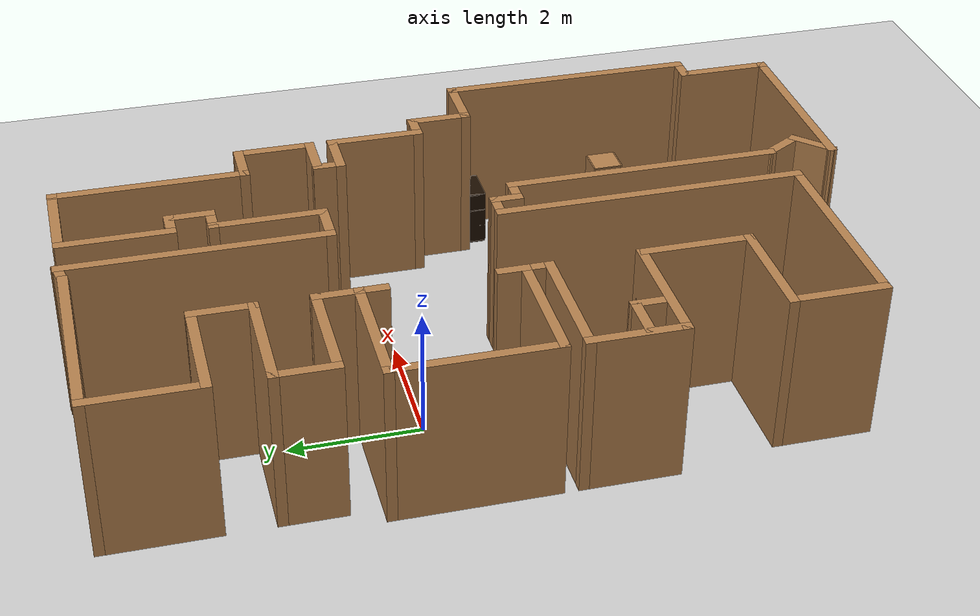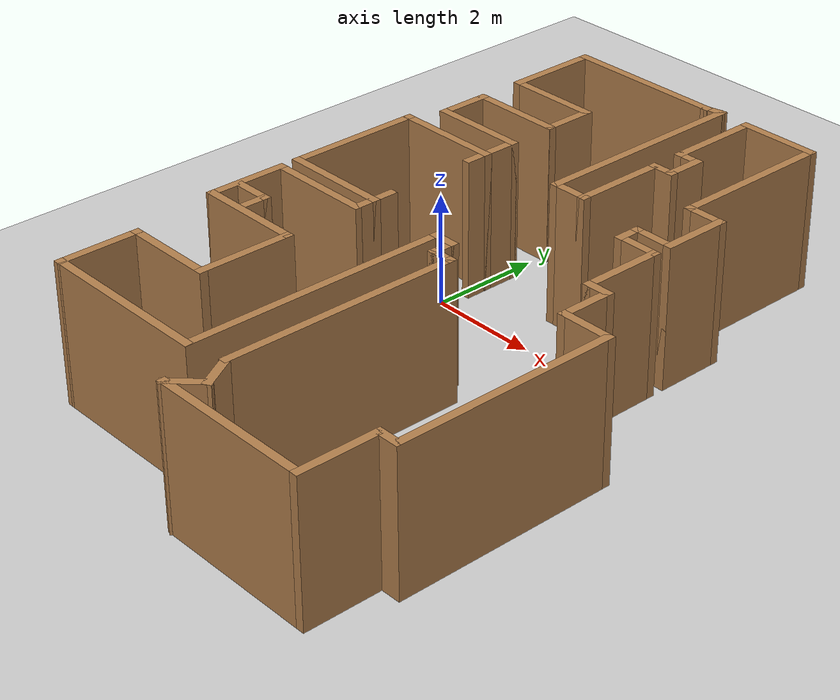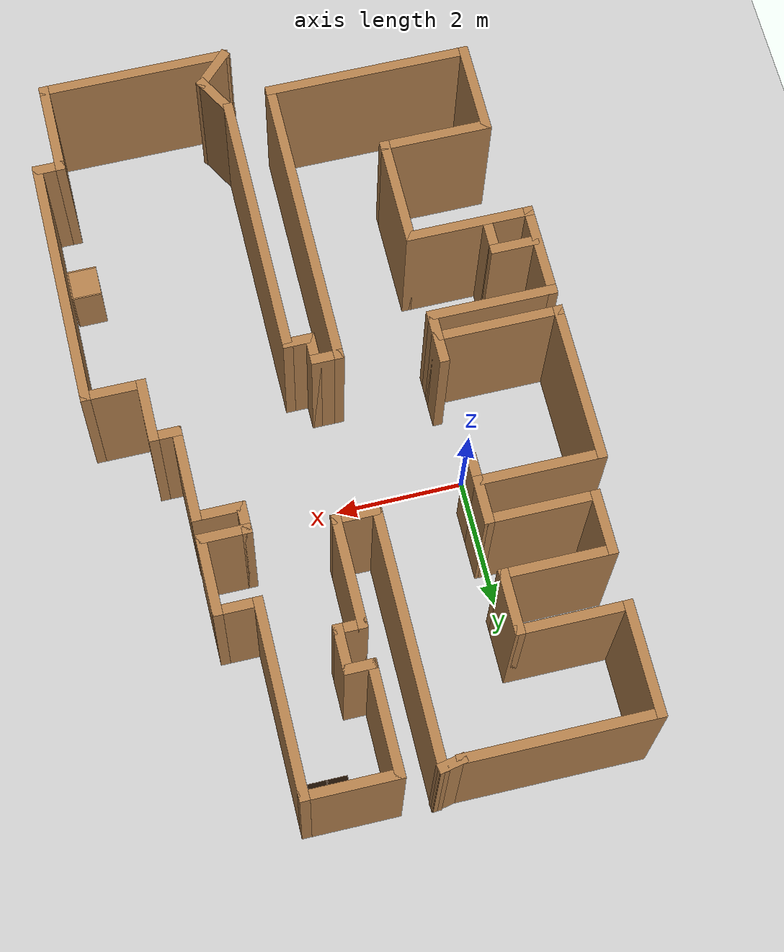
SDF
<sdf version="1.6">
 <world name="default">
  <light name="sun" type="directional">
   <pose>0 0 10 0 -0 0</pose>
   <diffuse>0.8 0.8 0.8 1</diffuse>
   <specular>0.2 0.2 0.2 1</specular>
   <attenuation>
    <range>1000</range>
    <constant>0.9</constant>
    <linear>0.01</linear>
    <quadratic>0.001</quadratic>
   </attenuation>
   <direction>-0.5 0.1 -0.9</direction>
  </light>
  <model name="ground_plane">
   <static>1</static>
   <link name="link">
    <collision name="collision">
     <geometry><plane><normal>0 0 1</normal><size>100 100</size></plane></geometry>
     <surface>
      <contact><collide_bitmask>65535</collide_bitmask></contact>
      <friction><ode><mu>100</mu><mu2>50</mu2></ode></friction>
     </surface>
    </collision>
    <visual name="visual">
     <cast_shadows>0</cast_shadows>
     <geometry><plane><normal>0 0 1</normal><size>100 100</size></plane></geometry>
     <material>
      <script><uri>file://media/materials/scripts/gazebo.material</uri><name>Gazebo/Grey</name></script>
     </material>
    </visual>
   </link>
  </model>
  <gravity>0 0 -9.8</gravity>
  <magnetic_field>6e-06 2.3e-05 -4.2e-05</magnetic_field>
  <atmosphere type="adiabatic"/>
  <physics name="default_physics" default="0" type="ode">
   <max_step_size>0.001</max_step_size>
   <real_time_factor>1</real_time_factor>
   <real_time_update_rate>1000</real_time_update_rate>
  </physics>
  <scene><ambient>0.4 0.4 0.4 1</ambient><background>0.7 0.7 0.7 1</background><shadows>1</shadows></scene>
  <audio><device>default</device></audio>
  <spherical_coordinates>
   <surface_model>EARTH_WGS84</surface_model>
   <latitude_deg>0</latitude_deg>
   <longitude_deg>0</longitude_deg>
   <elevation>0</elevation>
   <heading_deg>0</heading_deg>
  </spherical_coordinates>
  <model name="map_84">
   <pose>1.8252 -1.07497 0 0 -0 0</pose>
   <link name="Wall_0">
    <collision name="Wall_0_Collision">
     <geometry><box><size>3 0.15 2.5</size></box></geometry>
     <pose>0 0 1.25 0 -0 0</pose>
    </collision>
    <visual name="Wall_0_Visual">
     <pose>0 0 1.25 0 -0 0</pose>
     <geometry><box><size>3 0.15 2.5</size></box></geometry>
     <material>
      <script><uri>file://media/materials/scripts/gazebo.material</uri><name>Gazebo/Wood</name></script>
      <ambient>1 1 1 1</ambient>
     </material>
     <meta><layer>0</layer></meta>
    </visual>
    <pose>-1.88787 5.82769 0 0 -0 3.14159</pose>
   </link>
   <link name="Wall_1">
    <collision name="Wall_1_Collision">
     <geometry><box><size>1.75 0.15 2.5</size></box></geometry>
     <pose>0 0 1.25 0 -0 0</pose>
    </collision>
    <visual name="Wall_1_Visual">
     <pose>0 0 1.25 0 -0 0</pose>
     <geometry><box><size>1.75 0.15 2.5</size></box></geometry>
     <material>
      <script><uri>file://media/materials/scripts/gazebo.material</uri><name>Gazebo/Wood</name></script>
      <ambient>1 1 1 1</ambient>
     </material>
     <meta><layer>0</layer></meta>
    </visual>
    <pose>-3.31287 5.02769 0 0 -0 -1.5708</pose>
   </link>
   <link name="Wall_10">
    <collision name="Wall_10_Collision">
     <geometry><box><size>2 0.15 2.5</size></box></geometry>
     <pose>0 0 1.25 0 -0 0</pose>
    </collision>
    <visual name="Wall_10_Visual">
     <pose>0 0 1.25 0 -0 0</pose>
     <geometry><box><size>2 0.15 2.5</size></box></geometry>
     <material>
      <script><uri>file://media/materials/scripts/gazebo.material</uri><name>Gazebo/Wood</name></script>
      <ambient>1 1 1 1</ambient>
     </material>
     <meta><layer>0</layer></meta>
    </visual>
    <pose>-2.63787 -0.422313 0 0 -0 0</pose>
   </link>
   <link name="Wall_11">
    <collision name="Wall_11_Collision">
     <geometry><box><size>0.5 0.15 2.5</size></box></geometry>
     <pose>0 0 1.25 0 -0 0</pose>
    </collision>
    <visual name="Wall_11_Visual">
     <pose>0 0 1.25 0 -0 0</pose>
     <geometry><box><size>0.5 0.15 2.5</size></box></geometry>
     <material>
      <script><uri>file://media/materials/scripts/gazebo.material</uri><name>Gazebo/Wood</name></script>
      <ambient>1 1 1 1</ambient>
     </material>
     <meta><layer>0</layer></meta>
    </visual>
    <pose>-1.71287 -0.597313 0 0 -0 -1.5708</pose>
   </link>
   <link name="Wall_12">
    <collision name="Wall_12_Collision">
     <geometry><box><size>2 0.15 2.5</size></box></geometry>
     <pose>0 0 1.25 0 -0 0</pose>
    </collision>
    <visual name="Wall_12_Visual">
     <pose>0 0 1.25 0 -0 0</pose>
     <geometry><box><size>2 0.15 2.5</size></box></geometry>
     <material>
      <script><uri>file://media/materials/scripts/gazebo.material</uri><name>Gazebo/Wood</name></script>
      <ambient>1 1 1 1</ambient>
     </material>
     <meta><layer>0</layer></meta>
    </visual>
    <pose>-2.63787 -0.772313 0 0 -0 3.14159</pose>
   </link>
   <link name="Wall_13">
    <collision name="Wall_13_Collision">
     <geometry><box><size>1.5 0.15 2.5</size></box></geometry>
     <pose>0 0 1.25 0 -0 0</pose>
    </collision>
    <visual name="Wall_13_Visual">
     <pose>0 0 1.25 0 -0 0</pose>
     <geometry><box><size>1.5 0.15 2.5</size></box></geometry>
     <material>
      <script><uri>file://media/materials/scripts/gazebo.material</uri><name>Gazebo/Wood</name></script>
      <ambient>1 1 1 1</ambient>
     </material>
     <meta><layer>0</layer></meta>
    </visual>
    <pose>-3.56287 -1.44731 0 0 -0 -1.5708</pose>
   </link>
   <link name="Wall_14">
    <collision name="Wall_14_Collision">
     <geometry><box><size>2 0.15 2.5</size></box></geometry>
     <pose>0 0 1.25 0 -0 0</pose>
    </collision>
    <visual name="Wall_14_Visual">
     <pose>0 0 1.25 0 -0 0</pose>
     <geometry><box><size>2 0.15 2.5</size></box></geometry>
     <material>
      <script><uri>file://media/materials/scripts/gazebo.material</uri><name>Gazebo/Wood</name></script>
      <ambient>1 1 1 1</ambient>
     </material>
     <meta><layer>0</layer></meta>
    </visual>
    <pose>-2.63787 -2.12231 0 0 -0 0</pose>
   </link>
   <link name="Wall_17">
    <collision name="Wall_17_Collision">
     <geometry><box><size>1.75 0.15 2.5</size></box></geometry>
     <pose>0 0 1.25 0 -0 0</pose>
    </collision>
    <visual name="Wall_17_Visual">
     <pose>0 0 1.25 0 -0 0</pose>
     <geometry><box><size>1.75 0.15 2.5</size></box></geometry>
     <material>
      <script><uri>file://media/materials/scripts/gazebo.material</uri><name>Gazebo/Wood</name></script>
      <ambient>1 1 1 1</ambient>
     </material>
     <meta><layer>0</layer></meta>
    </visual>
    <pose>-1.71287 -2.92231 0 0 -0 -1.5708</pose>
   </link>
   <link name="Wall_18">
    <collision name="Wall_18_Collision">
     <geometry><box><size>1.75 0.15 2.5</size></box></geometry>
     <pose>0 0 1.25 0 -0 0</pose>
    </collision>
    <visual name="Wall_18_Visual">
     <pose>0 0 1.25 0 -0 0</pose>
     <geometry><box><size>1.75 0.15 2.5</size></box></geometry>
     <material>
      <script><uri>file://media/materials/scripts/gazebo.material</uri><name>Gazebo/Wood</name></script>
      <ambient>1 1 1 1</ambient>
     </material>
     <meta><layer>0</layer></meta>
    </visual>
    <pose>-2.51287 -3.72231 0 0 -0 3.14159</pose>
   </link>
   <link name="Wall_19">
    <collision name="Wall_19_Collision">
     <geometry><box><size>1.5 0.15 2.5</size></box></geometry>
     <pose>0 0 1.25 0 -0 0</pose>
    </collision>
    <visual name="Wall_19_Visual">
     <pose>0 0 1.25 0 -0 0</pose>
     <geometry><box><size>1.5 0.15 2.5</size></box></geometry>
     <material>
      <script><uri>file://media/materials/scripts/gazebo.material</uri><name>Gazebo/Wood</name></script>
      <ambient>1 1 1 1</ambient>
     </material>
     <meta><layer>0</layer></meta>
    </visual>
    <pose>-3.31287 -4.39731 0 0 -0 -1.5708</pose>
   </link>
   <link name="Wall_2">
    <collision name="Wall_2_Collision">
     <geometry><box><size>1.75 0.15 2.5</size></box></geometry>
     <pose>0 0 1.25 0 -0 0</pose>
    </collision>
    <visual name="Wall_2_Visual">
     <pose>0 0 1.25 0 -0 0</pose>
     <geometry><box><size>1.75 0.15 2.5</size></box></geometry>
     <material>
      <script><uri>file://media/materials/scripts/gazebo.material</uri><name>Gazebo/Wood</name></script>
      <ambient>1 1 1 1</ambient>
     </material>
     <meta><layer>0</layer></meta>
    </visual>
    <pose>-2.51287 4.22769 0 0 -0 0</pose>
   </link>
   <link name="Wall_20">
    <collision name="Wall_20_Collision">
     <geometry><box><size>3.25 0.15 2.5</size></box></geometry>
     <pose>0 0 1.25 0 -0 0</pose>
    </collision>
    <visual name="Wall_20_Visual">
     <pose>0 0 1.25 0 -0 0</pose>
     <geometry><box><size>3.25 0.15 2.5</size></box></geometry>
     <material>
      <script><uri>file://media/materials/scripts/gazebo.material</uri><name>Gazebo/Wood</name></script>
      <ambient>1 1 1 1</ambient>
     </material>
     <meta><layer>0</layer></meta>
    </visual>
    <pose>-1.76287 -5.07231 0 0 -0 0</pose>
   </link>
   <link name="Wall_23">
    <collision name="Wall_23_Collision">
     <geometry><box><size>0.75 0.15 2.5</size></box></geometry>
     <pose>0 0 1.25 0 -0 0</pose>
    </collision>
    <visual name="Wall_23_Visual">
     <pose>0 0 1.25 0 -0 0</pose>
     <geometry><box><size>0.75 0.15 2.5</size></box></geometry>
     <material>
      <script><uri>file://media/materials/scripts/gazebo.material</uri><name>Gazebo/Wood</name></script>
      <ambient>1 1 1 1</ambient>
     </material>
     <meta><layer>0</layer></meta>
    </visual>
    <pose>-3.20614 -1.62308 0 0 -0 0</pose>
   </link>
   <link name="Wall_24">
    <collision name="Wall_24_Collision">
     <geometry><box><size>0.5 0.15 2.5</size></box></geometry>
     <pose>0 0 1.25 0 -0 0</pose>
    </collision>
    <visual name="Wall_24_Visual">
     <pose>0 0 1.25 0 -0 0</pose>
     <geometry><box><size>0.5 0.15 2.5</size></box></geometry>
     <material>
      <script><uri>file://media/materials/scripts/gazebo.material</uri><name>Gazebo/Wood</name></script>
      <ambient>1 1 1 1</ambient>
     </material>
     <meta><layer>0</layer></meta>
    </visual>
    <pose>-2.90614 -1.79808 0 0 -0 -1.5708</pose>
   </link>
   <link name="Wall_28">
    <collision name="Wall_28_Collision">
     <geometry><box><size>4.75 0.15 2.5</size></box></geometry>
     <pose>0 0 1.25 0 -0 0</pose>
    </collision>
    <visual name="Wall_28_Visual">
     <pose>0 0 1.25 0 -0 0</pose>
     <geometry><box><size>4.75 0.15 2.5</size></box></geometry>
     <material>
      <script><uri>file://media/materials/scripts/gazebo.material</uri><name>Gazebo/Wood</name></script>
      <ambient>1 1 1 1</ambient>
     </material>
     <meta><layer>0</layer></meta>
    </visual>
    <pose>-0.212868 -2.77231 0 0 -0 1.5708</pose>
   </link>
   <link name="Wall_29">
    <collision name="Wall_29_Collision">
     <geometry><box><size>0.5 0.15 2.5</size></box></geometry>
     <pose>0 0 1.25 0 -0 0</pose>
    </collision>
    <visual name="Wall_29_Visual">
     <pose>0 0 1.25 0 -0 0</pose>
     <geometry><box><size>0.5 0.15 2.5</size></box></geometry>
     <material>
      <script><uri>file://media/materials/scripts/gazebo.material</uri><name>Gazebo/Wood</name></script>
      <ambient>1 1 1 1</ambient>
     </material>
     <meta><layer>0</layer></meta>
    </visual>
    <pose>-0.037868 -0.472313 0 0 -0 0</pose>
   </link>
   <link name="Wall_3">
    <collision name="Wall_3_Collision">
     <geometry><box><size>1 0.15 2.5</size></box></geometry>
     <pose>0 0 1.25 0 -0 0</pose>
    </collision>
    <visual name="Wall_3_Visual">
     <pose>0 0 1.25 0 -0 0</pose>
     <geometry><box><size>1 0.15 2.5</size></box></geometry>
     <material>
      <script><uri>file://media/materials/scripts/gazebo.material</uri><name>Gazebo/Wood</name></script>
      <ambient>1 1 1 1</ambient>
     </material>
     <meta><layer>0</layer></meta>
    </visual>
    <pose>-1.71287 3.80269 0 0 -0 -1.5708</pose>
   </link>
   <link name="Wall_30">
    <collision name="Wall_30_Collision">
     <geometry><box><size>0.5 0.15 2.5</size></box></geometry>
     <pose>0 0 1.25 0 -0 0</pose>
    </collision>
    <visual name="Wall_30_Visual">
     <pose>0 0 1.25 0 -0 0</pose>
     <geometry><box><size>0.5 0.15 2.5</size></box></geometry>
     <material>
      <script><uri>file://media/materials/scripts/gazebo.material</uri><name>Gazebo/Wood</name></script>
      <ambient>1 1 1 1</ambient>
     </material>
     <meta><layer>0</layer></meta>
    </visual>
    <pose>0.137132 -0.647313 0 0 -0 -1.5708</pose>
   </link>
   <link name="Wall_31">
    <collision name="Wall_31_Collision">
     <geometry><box><size>0.5 0.15 2.5</size></box></geometry>
     <pose>0 0 1.25 0 -0 0</pose>
    </collision>
    <visual name="Wall_31_Visual">
     <pose>0 0 1.25 0 -0 0</pose>
     <geometry><box><size>0.5 0.15 2.5</size></box></geometry>
     <material>
      <script><uri>file://media/materials/scripts/gazebo.material</uri><name>Gazebo/Wood</name></script>
      <ambient>1 1 1 1</ambient>
     </material>
     <meta><layer>0</layer></meta>
    </visual>
    <pose>0.312132 -0.822313 0 0 -0 0</pose>
   </link>
   <link name="Wall_32">
    <collision name="Wall_32_Collision">
     <geometry><box><size>4.25 0.15 2.5</size></box></geometry>
     <pose>0 0 1.25 0 -0 0</pose>
    </collision>
    <visual name="Wall_32_Visual">
     <pose>0 0 1.25 0 -0 0</pose>
     <geometry><box><size>4.25 0.15 2.5</size></box></geometry>
     <material>
      <script><uri>file://media/materials/scripts/gazebo.material</uri><name>Gazebo/Wood</name></script>
      <ambient>1 1 1 1</ambient>
     </material>
     <meta><layer>0</layer></meta>
    </visual>
    <pose>0.487132 -2.87231 0 0 -0 -1.5708</pose>
   </link>
   <link name="Wall_37">
    <collision name="Wall_37_Collision">
     <geometry><box><size>0.75 0.15 2.5</size></box></geometry>
     <pose>0 0 1.25 0 -0 0</pose>
    </collision>
    <visual name="Wall_37_Visual">
     <pose>0 0 1.25 0 -0 0</pose>
     <geometry><box><size>0.75 0.15 2.5</size></box></geometry>
     <material>
      <script><uri>file://media/materials/scripts/gazebo.material</uri><name>Gazebo/Wood</name></script>
      <ambient>1 1 1 1</ambient>
     </material>
     <meta><layer>0</layer></meta>
    </visual>
    <pose>0.637132 -5.18212 0 0 -0 -1.0472</pose>
   </link>
   <link name="Wall_38">
    <collision name="Wall_38_Collision">
     <geometry><box><size>0.75 0.15 2.5</size></box></geometry>
     <pose>0 0 1.25 0 -0 0</pose>
    </collision>
    <visual name="Wall_38_Visual">
     <pose>0 0 1.25 0 -0 0</pose>
     <geometry><box><size>0.75 0.15 2.5</size></box></geometry>
     <material>
      <script><uri>file://media/materials/scripts/gazebo.material</uri><name>Gazebo/Wood</name></script>
      <ambient>1 1 1 1</ambient>
     </material>
     <meta><layer>0</layer></meta>
    </visual>
    <pose>0.575 -5.65406 0 0 -0 -2.35619</pose>
   </link>
   <link name="Wall_39">
    <collision name="Wall_39_Collision">
     <geometry><box><size>3 0.15 2.5</size></box></geometry>
     <pose>0 0 1.25 0 -0 0</pose>
    </collision>
    <visual name="Wall_39_Visual">
     <pose>0 0 1.25 0 -0 0</pose>
     <geometry><box><size>3 0.15 2.5</size></box></geometry>
     <material>
      <script><uri>file://media/materials/scripts/gazebo.material</uri><name>Gazebo/Wood</name></script>
      <ambient>1 1 1 1</ambient>
     </material>
     <meta><layer>0</layer></meta>
    </visual>
    <pose>1.78787 -5.86619 0 0 -0 0</pose>
   </link>
   <link name="Wall_4">
    <collision name="Wall_4_Collision">
     <geometry><box><size>1.75 0.15 2.5</size></box></geometry>
     <pose>0 0 1.25 0 -0 0</pose>
    </collision>
    <visual name="Wall_4_Visual">
     <pose>0 0 1.25 0 -0 0</pose>
     <geometry><box><size>1.75 0.15 2.5</size></box></geometry>
     <material>
      <script><uri>file://media/materials/scripts/gazebo.material</uri><name>Gazebo/Wood</name></script>
      <ambient>1 1 1 1</ambient>
     </material>
     <meta><layer>0</layer></meta>
    </visual>
    <pose>-2.51287 3.37769 0 0 -0 3.14159</pose>
   </link>
   <link name="Wall_40">
    <collision name="Wall_40_Collision">
     <geometry><box><size>1.5 0.15 2.5</size></box></geometry>
     <pose>0 0 1.25 0 -0 0</pose>
    </collision>
    <visual name="Wall_40_Visual">
     <pose>0 0 1.25 0 -0 0</pose>
     <geometry><box><size>1.5 0.15 2.5</size></box></geometry>
     <material>
      <script><uri>file://media/materials/scripts/gazebo.material</uri><name>Gazebo/Wood</name></script>
      <ambient>1 1 1 1</ambient>
     </material>
     <meta><layer>0</layer></meta>
    </visual>
    <pose>3.21287 -5.19119 0 0 -0 1.5708</pose>
   </link>
   <link name="Wall_41">
    <collision name="Wall_41_Collision">
     <geometry><box><size>0.5 0.15 2.5</size></box></geometry>
     <pose>0 0 1.25 0 -0 0</pose>
    </collision>
    <visual name="Wall_41_Visual">
     <pose>0 0 1.25 0 -0 0</pose>
     <geometry><box><size>0.5 0.15 2.5</size></box></geometry>
     <material>
      <script><uri>file://media/materials/scripts/gazebo.material</uri><name>Gazebo/Wood</name></script>
      <ambient>1 1 1 1</ambient>
     </material>
     <meta><layer>0</layer></meta>
    </visual>
    <pose>3.38787 -4.51619 0 0 -0 0</pose>
   </link>
   <link name="Wall_42">
    <collision name="Wall_42_Collision">
     <geometry><box><size>4 0.15 2.5</size></box></geometry>
     <pose>0 0 1.25 0 -0 0</pose>
    </collision>
    <visual name="Wall_42_Visual">
     <pose>0 0 1.25 0 -0 0</pose>
     <geometry><box><size>4 0.15 2.5</size></box></geometry>
     <material>
      <script><uri>file://media/materials/scripts/gazebo.material</uri><name>Gazebo/Wood</name></script>
      <ambient>1 1 1 1</ambient>
     </material>
     <meta><layer>0</layer></meta>
    </visual>
    <pose>3.56287 -2.59119 0 0 -0 1.5708</pose>
   </link>
   <link name="Wall_43">
    <collision name="Wall_43_Collision">
     <geometry><box><size>1 0.15 2.5</size></box></geometry>
     <pose>0 0 1.25 0 -0 0</pose>
    </collision>
    <visual name="Wall_43_Visual">
     <pose>0 0 1.25 0 -0 0</pose>
     <geometry><box><size>1 0.15 2.5</size></box></geometry>
     <material>
      <script><uri>file://media/materials/scripts/gazebo.material</uri><name>Gazebo/Wood</name></script>
      <ambient>1 1 1 1</ambient>
     </material>
     <meta><layer>0</layer></meta>
    </visual>
    <pose>3.13787 -0.666192 0 0 -0 3.14159</pose>
   </link>
   <link name="Wall_44">
    <collision name="Wall_44_Collision">
     <geometry><box><size>1 0.15 2.5</size></box></geometry>
     <pose>0 0 1.25 0 -0 0</pose>
    </collision>
    <visual name="Wall_44_Visual">
     <pose>0 0 1.25 0 -0 0</pose>
     <geometry><box><size>1 0.15 2.5</size></box></geometry>
     <material>
      <script><uri>file://media/materials/scripts/gazebo.material</uri><name>Gazebo/Wood</name></script>
      <ambient>1 1 1 1</ambient>
     </material>
     <meta><layer>0</layer></meta>
    </visual>
    <pose>2.71287 -0.241192 0 0 -0 1.5708</pose>
   </link>
   <link name="Wall_45">
    <collision name="Wall_45_Collision">
     <geometry><box><size>0.5 0.15 2.5</size></box></geometry>
     <pose>0 0 1.25 0 -0 0</pose>
    </collision>
    <visual name="Wall_45_Visual">
     <pose>0 0 1.25 0 -0 0</pose>
     <geometry><box><size>0.5 0.15 2.5</size></box></geometry>
     <material>
      <script><uri>file://media/materials/scripts/gazebo.material</uri><name>Gazebo/Wood</name></script>
      <ambient>1 1 1 1</ambient>
     </material>
     <meta><layer>0</layer></meta>
    </visual>
    <pose>2.53787 0.183808 0 0 -0 3.14159</pose>
   </link>
   <link name="Wall_46">
    <collision name="Wall_46_Collision">
     <geometry><box><size>1.5 0.15 2.5</size></box></geometry>
     <pose>0 0 1.25 0 -0 0</pose>
    </collision>
    <visual name="Wall_46_Visual">
     <pose>0 0 1.25 0 -0 0</pose>
     <geometry><box><size>1.5 0.15 2.5</size></box></geometry>
     <material>
      <script><uri>file://media/materials/scripts/gazebo.material</uri><name>Gazebo/Wood</name></script>
      <ambient>1 1 1 1</ambient>
     </material>
     <meta><layer>0</layer></meta>
    </visual>
    <pose>2.36287 0.858808 0 0 -0 1.5708</pose>
   </link>
   <link name="Wall_5">
    <collision name="Wall_5_Collision">
     <geometry><box><size>1 0.15 2.5</size></box></geometry>
     <pose>0 0 1.25 0 -0 0</pose>
    </collision>
    <visual name="Wall_5_Visual">
     <pose>0 0 1.25 0 -0 0</pose>
     <geometry><box><size>1 0.15 2.5</size></box></geometry>
     <material>
      <script><uri>file://media/materials/scripts/gazebo.material</uri><name>Gazebo/Wood</name></script>
      <ambient>1 1 1 1</ambient>
     </material>
     <meta><layer>0</layer></meta>
    </visual>
    <pose>-3.31287 2.95269 0 0 -0 -1.5708</pose>
   </link>
   <link name="Wall_50">
    <collision name="Wall_50_Collision">
     <geometry><box><size>1.25 0.15 2.5</size></box></geometry>
     <pose>0 0 1.25 0 -0 0</pose>
    </collision>
    <visual name="Wall_50_Visual">
     <pose>0 0 1.25 0 -0 0</pose>
     <geometry><box><size>1.25 0.15 2.5</size></box></geometry>
     <material>
      <script><uri>file://media/materials/scripts/gazebo.material</uri><name>Gazebo/Wood</name></script>
      <ambient>1 1 1 1</ambient>
     </material>
     <meta><layer>0</layer></meta>
    </visual>
    <pose>2.36287 2.43381 0 0 -0 1.5708</pose>
   </link>
   <link name="Wall_51">
    <collision name="Wall_51_Collision">
     <geometry><box><size>0.75 0.15 2.5</size></box></geometry>
     <pose>0 0 1.25 0 -0 0</pose>
    </collision>
    <visual name="Wall_51_Visual">
     <pose>0 0 1.25 0 -0 0</pose>
     <geometry><box><size>0.75 0.15 2.5</size></box></geometry>
     <material>
      <script><uri>file://media/materials/scripts/gazebo.material</uri><name>Gazebo/Wood</name></script>
      <ambient>1 1 1 1</ambient>
     </material>
     <meta><layer>0</layer></meta>
    </visual>
    <pose>2.06287 2.98381 0 0 -0 3.14159</pose>
   </link>
   <link name="Wall_52">
    <collision name="Wall_52_Collision">
     <geometry><box><size>3 0.15 2.5</size></box></geometry>
     <pose>0 0 1.25 0 -0 0</pose>
    </collision>
    <visual name="Wall_52_Visual">
     <pose>0 0 1.25 0 -0 0</pose>
     <geometry><box><size>3 0.15 2.5</size></box></geometry>
     <material>
      <script><uri>file://media/materials/scripts/gazebo.material</uri><name>Gazebo/Wood</name></script>
      <ambient>1 1 1 1</ambient>
     </material>
     <meta><layer>0</layer></meta>
    </visual>
    <pose>1.76287 4.40881 0 0 -0 1.5708</pose>
   </link>
   <link name="Wall_53">
    <collision name="Wall_53_Collision">
     <geometry><box><size>1.5 0.15 2.5</size></box></geometry>
     <pose>0 0 1.25 0 -0 0</pose>
    </collision>
    <visual name="Wall_53_Visual">
     <pose>0 0 1.25 0 -0 0</pose>
     <geometry><box><size>1.5 0.15 2.5</size></box></geometry>
     <material>
      <script><uri>file://media/materials/scripts/gazebo.material</uri><name>Gazebo/Wood</name></script>
      <ambient>1 1 1 1</ambient>
     </material>
     <meta><layer>0</layer></meta>
    </visual>
    <pose>1.08787 5.83381 0 0 -0 3.14159</pose>
   </link>
   <link name="Wall_54">
    <collision name="Wall_54_Collision">
     <geometry><box><size>1.75 0.15 2.5</size></box></geometry>
     <pose>0 0 1.25 0 -0 0</pose>
    </collision>
    <visual name="Wall_54_Visual">
     <pose>0 0 1.25 0 -0 0</pose>
     <geometry><box><size>1.75 0.15 2.5</size></box></geometry>
     <material>
      <script><uri>file://media/materials/scripts/gazebo.material</uri><name>Gazebo/Wood</name></script>
      <ambient>1 1 1 1</ambient>
     </material>
     <meta><layer>0</layer></meta>
    </visual>
    <pose>0.412868 5.03381 0 0 -0 -1.5708</pose>
   </link>
   <link name="Wall_55">
    <collision name="Wall_55_Collision">
     <geometry><box><size>0.5 0.15 2.5</size></box></geometry>
     <pose>0 0 1.25 0 -0 0</pose>
    </collision>
    <visual name="Wall_55_Visual">
     <pose>0 0 1.25 0 -0 0</pose>
     <geometry><box><size>0.5 0.15 2.5</size></box></geometry>
     <material>
      <script><uri>file://media/materials/scripts/gazebo.material</uri><name>Gazebo/Wood</name></script>
      <ambient>1 1 1 1</ambient>
     </material>
     <meta><layer>0</layer></meta>
    </visual>
    <pose>0.587868 4.23381 0 0 -0 0</pose>
   </link>
   <link name="Wall_56">
    <collision name="Wall_56_Collision">
     <geometry><box><size>0.75 0.15 2.5</size></box></geometry>
     <pose>0 0 1.25 0 -0 0</pose>
    </collision>
    <visual name="Wall_56_Visual">
     <pose>0 0 1.25 0 -0 0</pose>
     <geometry><box><size>0.75 0.15 2.5</size></box></geometry>
     <material>
      <script><uri>file://media/materials/scripts/gazebo.material</uri><name>Gazebo/Wood</name></script>
      <ambient>1 1 1 1</ambient>
     </material>
     <meta><layer>0</layer></meta>
    </visual>
    <pose>0.762868 3.93381 0 0 -0 -1.5708</pose>
   </link>
   <link name="Wall_57">
    <collision name="Wall_57_Collision">
     <geometry><box><size>0.5 0.15 2.5</size></box></geometry>
     <pose>0 0 1.25 0 -0 0</pose>
    </collision>
    <visual name="Wall_57_Visual">
     <pose>0 0 1.25 0 -0 0</pose>
     <geometry><box><size>0.5 0.15 2.5</size></box></geometry>
     <material>
      <script><uri>file://media/materials/scripts/gazebo.material</uri><name>Gazebo/Wood</name></script>
      <ambient>1 1 1 1</ambient>
     </material>
     <meta><layer>0</layer></meta>
    </visual>
    <pose>0.587868 3.63381 0 0 -0 3.14159</pose>
   </link>
   <link name="Wall_58">
    <collision name="Wall_58_Collision">
     <geometry><box><size>1.75 0.15 2.5</size></box></geometry>
     <pose>0 0 1.25 0 -0 0</pose>
    </collision>
    <visual name="Wall_58_Visual">
     <pose>0 0 1.25 0 -0 0</pose>
     <geometry><box><size>1.75 0.15 2.5</size></box></geometry>
     <material>
      <script><uri>file://media/materials/scripts/gazebo.material</uri><name>Gazebo/Wood</name></script>
      <ambient>1 1 1 1</ambient>
     </material>
     <meta><layer>0</layer></meta>
    </visual>
    <pose>0.412868 2.83381 0 0 -0 -1.5708</pose>
   </link>
   <link name="Wall_59">
    <collision name="Wall_59_Collision">
     <geometry><box><size>0.75 0.15 2.5</size></box></geometry>
     <pose>0 0 1.25 0 -0 0</pose>
    </collision>
    <visual name="Wall_59_Visual">
     <pose>0 0 1.25 0 -0 0</pose>
     <geometry><box><size>0.75 0.15 2.5</size></box></geometry>
     <material>
      <script><uri>file://media/materials/scripts/gazebo.material</uri><name>Gazebo/Wood</name></script>
      <ambient>1 1 1 1</ambient>
     </material>
     <meta><layer>0</layer></meta>
    </visual>
    <pose>0.112868 2.03381 0 0 -0 3.14159</pose>
   </link>
   <link name="Wall_6">
    <collision name="Wall_6_Collision">
     <geometry><box><size>1.75 0.15 2.5</size></box></geometry>
     <pose>0 0 1.25 0 -0 0</pose>
    </collision>
    <visual name="Wall_6_Visual">
     <pose>0 0 1.25 0 -0 0</pose>
     <geometry><box><size>1.75 0.15 2.5</size></box></geometry>
     <material>
      <script><uri>file://media/materials/scripts/gazebo.material</uri><name>Gazebo/Wood</name></script>
      <ambient>1 1 1 1</ambient>
     </material>
     <meta><layer>0</layer></meta>
    </visual>
    <pose>-2.51287 2.52769 0 0 -0 0</pose>
   </link>
   <link name="Wall_60">
    <collision name="Wall_60_Collision">
     <geometry><box><size>4 0.15 2.5</size></box></geometry>
     <pose>0 0 1.25 0 -0 0</pose>
    </collision>
    <visual name="Wall_60_Visual">
     <pose>0 0 1.25 0 -0 0</pose>
     <geometry><box><size>4 0.15 2.5</size></box></geometry>
     <material>
      <script><uri>file://media/materials/scripts/gazebo.material</uri><name>Gazebo/Wood</name></script>
      <ambient>1 1 1 1</ambient>
     </material>
     <meta><layer>0</layer></meta>
    </visual>
    <pose>-0.187132 3.95881 0 0 -0 1.5708</pose>
   </link>
   <link name="Wall_61">
    <collision name="Wall_61_Collision">
     <geometry><box><size>0.431389 0.15 2.5</size></box></geometry>
     <pose>0 0 1.25 0 -0 0</pose>
    </collision>
    <visual name="Wall_61_Visual">
     <pose>0 0 1.25 0 -0 0</pose>
     <geometry><box><size>0.431389 0.15 2.5</size></box></geometry>
     <material>
      <script><uri>file://media/materials/scripts/gazebo.material</uri><name>Gazebo/Wood</name></script>
      <ambient>1 1 1 1</ambient>
     </material>
     <meta><layer>0</layer></meta>
    </visual>
    <pose>-0.325 5.85575 0 0 -0 -2.94081</pose>
   </link>
   <link name="Wall_63">
    <collision name="Wall_63_Collision">
     <geometry><box><size>0.81996 0.15 2.5</size></box></geometry>
     <pose>0 0 1.25 0 -0 0</pose>
    </collision>
    <visual name="Wall_63_Visual">
     <pose>0 0 1.25 0 -0 0</pose>
     <geometry><box><size>0.81996 0.15 2.5</size></box></geometry>
     <material>
      <script><uri>file://media/materials/scripts/gazebo.material</uri><name>Gazebo/Wood</name></script>
      <ambient>1 1 1 1</ambient>
     </material>
     <meta><layer>0</layer></meta>
    </visual>
    <pose>2.02789 1.53381 0 0 -0 3.14159</pose>
   </link>
   <link name="Wall_67">
    <collision name="Wall_67_Collision">
     <geometry><box><size>0.5 0.15 2.5</size></box></geometry>
     <pose>0 0 1.25 0 -0 0</pose>
    </collision>
    <visual name="Wall_67_Visual">
     <pose>0 0 1.25 0 -0 0</pose>
     <geometry><box><size>0.5 0.15 2.5</size></box></geometry>
     <material>
      <script><uri>file://media/materials/scripts/gazebo.material</uri><name>Gazebo/Wood</name></script>
      <ambient>1 1 1 1</ambient>
     </material>
     <meta><layer>0</layer></meta>
    </visual>
    <pose>1.69291 1.70881 0 0 -0 1.5708</pose>
   </link>
   <link name="Wall_68">
    <collision name="Wall_68_Collision">
     <geometry><box><size>0.81996 0.15 2.5</size></box></geometry>
     <pose>0 0 1.25 0 -0 0</pose>
    </collision>
    <visual name="Wall_68_Visual">
     <pose>0 0 1.25 0 -0 0</pose>
     <geometry><box><size>0.81996 0.15 2.5</size></box></geometry>
     <material>
      <script><uri>file://media/materials/scripts/gazebo.material</uri><name>Gazebo/Wood</name></script>
      <ambient>1 1 1 1</ambient>
     </material>
     <meta><layer>0</layer></meta>
    </visual>
    <pose>2.02789 1.88381 0 0 -0 0</pose>
   </link>
   <link name="Wall_7">
    <collision name="Wall_7_Collision">
     <geometry><box><size>0.75 0.15 2.5</size></box></geometry>
     <pose>0 0 1.25 0 -0 0</pose>
    </collision>
    <visual name="Wall_7_Visual">
     <pose>0 0 1.25 0 -0 0</pose>
     <geometry><box><size>0.75 0.15 2.5</size></box></geometry>
     <material>
      <script><uri>file://media/materials/scripts/gazebo.material</uri><name>Gazebo/Wood</name></script>
      <ambient>1 1 1 1</ambient>
     </material>
     <meta><layer>0</layer></meta>
    </visual>
    <pose>-1.71287 2.22769 0 0 -0 -1.5708</pose>
   </link>
   <link name="Wall_70">
    <collision name="Wall_70_Collision">
     <geometry><box><size>0.5 0.15 2.5</size></box></geometry>
     <pose>0 0 1.25 0 -0 0</pose>
    </collision>
    <visual name="Wall_70_Visual">
     <pose>0 0 1.25 0 -0 0</pose>
     <geometry><box><size>0.5 0.15 2.5</size></box></geometry>
     <material>
      <script><uri>file://media/materials/scripts/gazebo.material</uri><name>Gazebo/Wood</name></script>
      <ambient>1 1 1 1</ambient>
     </material>
     <meta><layer>0</layer></meta>
    </visual>
    <pose>-1.71287 1.75269 0 0 -0 -1.5708</pose>
   </link>
   <link name="Wall_72">
    <collision name="Wall_72_Collision">
     <geometry><box><size>0.5 0.15 2.5</size></box></geometry>
     <pose>0 0 1.25 0 -0 0</pose>
    </collision>
    <visual name="Wall_72_Visual">
     <pose>0 0 1.25 0 -0 0</pose>
     <geometry><box><size>0.5 0.15 2.5</size></box></geometry>
     <material>
      <script><uri>file://media/materials/scripts/gazebo.material</uri><name>Gazebo/Wood</name></script>
      <ambient>1 1 1 1</ambient>
     </material>
     <meta><layer>0</layer></meta>
    </visual>
    <pose>-1.71287 -0.247313 0 0 -0 1.5708</pose>
   </link>
   <link name="Wall_8">
    <collision name="Wall_8_Collision">
     <geometry><box><size>2 0.15 2.5</size></box></geometry>
     <pose>0 0 1.25 0 -0 0</pose>
    </collision>
    <visual name="Wall_8_Visual">
     <pose>0 0 1.25 0 -0 0</pose>
     <geometry><box><size>2 0.15 2.5</size></box></geometry>
     <material>
      <script><uri>file://media/materials/scripts/gazebo.material</uri><name>Gazebo/Wood</name></script>
      <ambient>1 1 1 1</ambient>
     </material>
     <meta><layer>0</layer></meta>
    </visual>
    <pose>-2.63787 1.92769 0 0 -0 3.14159</pose>
   </link>
   <link name="Wall_9">
    <collision name="Wall_9_Collision">
     <geometry><box><size>2.5 0.15 2.5</size></box></geometry>
     <pose>0 0 1.25 0 -0 0</pose>
    </collision>
    <visual name="Wall_9_Visual">
     <pose>0 0 1.25 0 -0 0</pose>
     <geometry><box><size>2.5 0.15 2.5</size></box></geometry>
     <material>
      <script><uri>file://media/materials/scripts/gazebo.material</uri><name>Gazebo/Wood</name></script>
      <ambient>1 1 1 1</ambient>
     </material>
     <meta><layer>0</layer></meta>
    </visual>
    <pose>-3.56287 0.752687 0 0 -0 -1.5708</pose>
   </link>
   <static>1</static>
  </model>
  <model name="6_Cube_StorageE">
   <link name="Wall_0">
    <pose>0 0 0.01 0 -0 0</pose>
    <inertial>
     <mass>1.6201</mass>
     <inertia><ixx>0.0119</ixx><iyy>0.0631</iyy><izz>0.0513</izz><ixy>0</ixy><ixz>0</ixz><iyz>0</iyz></inertia>
    </inertial>
    <collision name="Wall_0_Collision"><geometry><box><size>0.616 0.296 0.02</size></box></geometry></collision>
    <visual name="Wall_0_Visual">
     <geometry><box><size>0.616 0.296 0.02</size></box></geometry>
     <material>
      <script><uri>file://media/materials/scripts/gazebo.material</uri><name>Gazebo/Grey</name></script>
      <ambient>0.105882 0.0509804 0 1</ambient>
     </material>
    </visual>
   </link>
   <joint name="0_2" type="fixed">
    <pose>-0.308 0 0 0 -0 0</pose>
    <parent>Wall_2</parent>
    <child>Wall_0</child>
    <axis>
     <xyz>1 0 0</xyz>
     <use_parent_model_frame>0</use_parent_model_frame>
     <limit><lower>-1e+16</lower><upper>1e+16</upper></limit>
    </axis>
   </joint>
   <joint name="0_12" type="fixed">
    <parent>Wall_12</parent>
    <child>Wall_0</child>
    <axis>
     <xyz>0 0 1</xyz>
     <use_parent_model_frame>0</use_parent_model_frame>
     <limit><lower>-1e+16</lower><upper>1e+16</upper></limit>
    </axis>
   </joint>
   <joint name="0_4" type="fixed">
    <pose>0.308 0 0 0 -0 0</pose>
    <parent>Wall_4</parent>
    <child>Wall_0</child>
    <axis>
     <xyz>1 0 0</xyz>
     <use_parent_model_frame>0</use_parent_model_frame>
     <limit><lower>-1e+16</lower><upper>1e+16</upper></limit>
    </axis>
   </joint>
   <link name="Wall_10">
    <pose>0 0 0.61 0 -0 0</pose>
    <inertial>
     <mass>1.6201</mass>
     <inertia><ixx>0.0119</ixx><iyy>0.0631</iyy><izz>0.0513</izz><ixy>0</ixy><ixz>0</ixz><iyz>0</iyz></inertia>
    </inertial>
    <collision name="Wall_10_Collision"><geometry><box><size>0.616 0.296 0.02</size></box></geometry></collision>
    <visual name="Wall_10_Visual">
     <geometry><box><size>0.616 0.296 0.02</size></box></geometry>
     <material>
      <script><uri>file://media/materials/scripts/gazebo.material</uri><name>Gazebo/Grey</name></script>
      <ambient>0.105882 0.0509804 0 1</ambient>
     </material>
    </visual>
   </link>
   <joint name="10_2" type="fixed">
    <pose>-0.308 0 0 0 -0 0</pose>
    <parent>Wall_2</parent>
    <child>Wall_10</child>
    <axis>
     <xyz>1 0 0</xyz>
     <use_parent_model_frame>0</use_parent_model_frame>
     <limit><lower>-1e+16</lower><upper>1e+16</upper></limit>
    </axis>
   </joint>
   <joint name="10_12" type="fixed">
    <parent>Wall_12</parent>
    <child>Wall_10</child>
    <axis>
     <xyz>0 0 1</xyz>
     <use_parent_model_frame>0</use_parent_model_frame>
     <limit><lower>-1e+16</lower><upper>1e+16</upper></limit>
    </axis>
   </joint>
   <joint name="10_4" type="fixed">
    <pose>0.308 0 0 0 -0 0</pose>
    <parent>Wall_4</parent>
    <child>Wall_10</child>
    <axis>
     <xyz>1 0 0</xyz>
     <use_parent_model_frame>0</use_parent_model_frame>
     <limit><lower>-1e+16</lower><upper>1e+16</upper></limit>
    </axis>
   </joint>
   <link name="Wall_12">
    <pose>0 0 0.4575 0 -0 0</pose>
    <inertial>
     <mass>2.4065</mass>
     <inertia><ixx>0.0177</ixx><iyy>0.1855</iyy><izz>0.168</izz><ixy>0</ixy><ixz>0</ixz><iyz>0</iyz></inertia>
    </inertial>
    <collision name="Wall_12_Collision"><geometry><box><size>0.02 0.296 0.915</size></box></geometry></collision>
    <visual name="Wall_12_Visual">
     <geometry><box><size>0.02 0.296 0.915</size></box></geometry>
     <material>
      <script><uri>file://media/materials/scripts/gazebo.material</uri><name>Gazebo/Grey</name></script>
      <ambient>0.105882 0.0509804 0 1</ambient>
     </material>
    </visual>
   </link>
   <link name="Wall_2">
    <pose>-0.298 0 0.4575 0 -0 0</pose>
    <inertial>
     <mass>2.4065</mass>
     <inertia><ixx>0.0177</ixx><iyy>0.1855</iyy><izz>0.168</izz><ixy>0</ixy><ixz>0</ixz><iyz>0</iyz></inertia>
    </inertial>
    <collision name="Wall_2_Collision"><geometry><box><size>0.02 0.296 0.915</size></box></geometry></collision>
    <visual name="Wall_2_Visual">
     <geometry><box><size>0.02 0.296 0.915</size></box></geometry>
     <material>
      <script><uri>file://media/materials/scripts/gazebo.material</uri><name>Gazebo/Grey</name></script>
      <ambient>0.105882 0.0509804 0 1</ambient>
     </material>
    </visual>
   </link>
   <link name="Wall_4">
    <pose>0.298 0 0.4575 0 -0 0</pose>
    <inertial>
     <mass>2.4065</mass>
     <inertia><ixx>0.0177</ixx><iyy>0.1855</iyy><izz>0.168</izz><ixy>0</ixy><ixz>0</ixz><iyz>0</iyz></inertia>
    </inertial>
    <collision name="Wall_4_Collision"><geometry><box><size>0.02 0.296 0.915</size></box></geometry></collision>
    <visual name="Wall_4_Visual">
     <geometry><box><size>0.02 0.296 0.915</size></box></geometry>
     <material>
      <script><uri>file://media/materials/scripts/gazebo.material</uri><name>Gazebo/Grey</name></script>
      <ambient>0.105882 0.0509804 0 1</ambient>
     </material>
    </visual>
   </link>
   <link name="Wall_6">
    <pose>0 0 0.905 0 -0 0</pose>
    <inertial>
     <mass>1.6201</mass>
     <inertia><ixx>0.0119</ixx><iyy>0.0631</iyy><izz>0.0513</izz><ixy>0</ixy><ixz>0</ixz><iyz>0</iyz></inertia>
    </inertial>
    <collision name="Wall_6_Collision"><geometry><box><size>0.616 0.296 0.02</size></box></geometry></collision>
    <visual name="Wall_6_Visual">
     <geometry><box><size>0.616 0.296 0.02</size></box></geometry>
     <material>
      <script><uri>file://media/materials/scripts/gazebo.material</uri><name>Gazebo/Grey</name></script>
      <ambient>0.105882 0.0509804 0 1</ambient>
     </material>
    </visual>
   </link>
   <joint name="6_2" type="fixed">
    <pose>-0.308 0 0 0 -0 0</pose>
    <parent>Wall_2</parent>
    <child>Wall_6</child>
    <axis>
     <xyz>2 0 0</xyz>
     <use_parent_model_frame>0</use_parent_model_frame>
     <limit><lower>-1e+16</lower><upper>1e+16</upper></limit>
    </axis>
   </joint>
   <joint name="6_12" type="fixed">
    <parent>Wall_12</parent>
    <child>Wall_6</child>
    <axis>
     <xyz>0 0 1</xyz>
     <use_parent_model_frame>0</use_parent_model_frame>
     <limit><lower>-1e+16</lower><upper>1e+16</upper></limit>
    </axis>
   </joint>
   <joint name="6_4" type="fixed">
    <pose>0.308 0 0 0 -0 0</pose>
    <parent>Wall_4</parent>
    <child>Wall_6</child>
    <axis>
     <xyz>1 0 0</xyz>
     <use_parent_model_frame>0</use_parent_model_frame>
     <limit><lower>-1e+16</lower><upper>1e+16</upper></limit>
    </axis>
   </joint>
   <link name="Wall_8">
    <pose>0 0 0.305 0 -0 0</pose>
    <inertial>
     <mass>1.6201</mass>
     <inertia><ixx>0.0119</ixx><iyy>0.0631</iyy><izz>0.0513</izz><ixy>0</ixy><ixz>0</ixz><iyz>0</iyz></inertia>
    </inertial>
    <collision name="Wall_8_Collision"><geometry><box><size>0.616 0.296 0.02</size></box></geometry></collision>
    <visual name="Wall_8_Visual">
     <geometry><box><size>0.616 0.296 0.02</size></box></geometry>
     <material>
      <script><uri>file://media/materials/scripts/gazebo.material</uri><name>Gazebo/Grey</name></script>
      <ambient>0.105882 0.0509804 0 1</ambient>
     </material>
    </visual>
   </link>
   <joint name="8_2" type="fixed">
    <pose>-0.308 0 0 0 -0 0</pose>
    <parent>Wall_2</parent>
    <child>Wall_8</child>
    <axis>
     <xyz>1 0 0</xyz>
     <use_parent_model_frame>0</use_parent_model_frame>
     <limit><lower>-1e+16</lower><upper>1e+16</upper></limit>
    </axis>
   </joint>
   <joint name="8_12" type="fixed">
    <parent>Wall_12</parent>
    <child>Wall_8</child>
    <axis>
     <xyz>0 0 1</xyz>
     <use_parent_model_frame>0</use_parent_model_frame>
     <limit><lower>-1e+16</lower><upper>1e+16</upper></limit>
    </axis>
   </joint>
   <joint name="8_4" type="fixed">
    <pose>0.308 0 0 0 -0 0</pose>
    <parent>Wall_4</parent>
    <child>Wall_8</child>
    <axis>
     <xyz>1 0 0</xyz>
     <use_parent_model_frame>0</use_parent_model_frame>
     <limit><lower>-1e+16</lower><upper>1e+16</upper></limit>
    </axis>
   </joint>
   <static>1</static>
   <pose>4.97478 -1.98292 0 0 -0 0</pose>
  </model>
  <model name="cabinet">
   <static>1</static>
   <link name="cabinet_bottom_plate">
    <inertial>
     <pose>0 0 -1 0 -0 0</pose>
     <inertia><ixx>2.05</ixx><ixy>0</ixy><ixz>0</ixz><iyy>2.05</iyy><iyz>0</iyz><izz>2.05</izz></inertia>
     <mass>25</mass>
    </inertial>
    <collision name="cabinet_bottom_plate_geom">
     <pose>0 0 0.01 0 -0 0</pose>
     <geometry><box><size>0.45 0.45 0.02</size></box></geometry>
    </collision>
    <visual name="cabinet_bottom_plate_geom_visual">
     <pose>0 0 0.01 0 -0 0</pose>
     <geometry><box><size>0.45 0.45 0.02</size></box></geometry>
     <material>
      <script><uri>file://media/materials/scripts/gazebo.material</uri><name>Gazebo/Wood</name></script>
     </material>
    </visual>
    <collision name="cabinet_bottom_plate_geom_cabinet_back_plate">
     <pose>0.235 0 0.51 0 -0 0</pose>
     <geometry><box><size>0.02 0.45 1.02</size></box></geometry>
    </collision>
    <visual name="cabinet_bottom_plate_geom_cabinet_back_plate_visual">
     <pose>0.235 0 0.51 0 -0 0</pose>
     <geometry><box><size>0.02 0.45 1.02</size></box></geometry>
     <material>
      <script><uri>file://media/materials/scripts/gazebo.material</uri><name>Gazebo/Wood</name></script>
     </material>
    </visual>
    <collision name="cabinet_bottom_plate_geom_cabinet_left_plate">
     <pose>0 0.235 0.51 0 -0 0</pose>
     <geometry><box><size>0.45 0.02 1.02</size></box></geometry>
    </collision>
    <visual name="cabinet_bottom_plate_geom_cabinet_left_plate_visual">
     <pose>0 0.235 0.51 0 -0 0</pose>
     <geometry><box><size>0.45 0.02 1.02</size></box></geometry>
     <material>
      <script><uri>file://media/materials/scripts/gazebo.material</uri><name>Gazebo/Wood</name></script>
     </material>
    </visual>
    <collision name="cabinet_bottom_plate_geom_cabinet_middle_plate">
     <pose>0 0 0.51 0 -0 0</pose>
     <geometry><box><size>0.45 0.45 0.02</size></box></geometry>
    </collision>
    <visual name="cabinet_bottom_plate_geom_cabinet_middle_plate_visual">
     <pose>0 0 0.51 0 -0 0</pose>
     <geometry><box><size>0.45 0.45 0.02</size></box></geometry>
     <material>
      <script><uri>file://media/materials/scripts/gazebo.material</uri><name>Gazebo/Wood</name></script>
     </material>
    </visual>
    <collision name="cabinet_bottom_plate_geom_cabinet_right_plate">
     <pose>0 -0.235 0.51 0 -0 0</pose>
     <geometry><box><size>0.45 0.02 1.02</size></box></geometry>
    </collision>
    <visual name="cabinet_bottom_plate_geom_cabinet_right_plate_visual">
     <pose>0 -0.235 0.51 0 -0 0</pose>
     <geometry><box><size>0.45 0.02 1.02</size></box></geometry>
     <material>
      <script><uri>file://media/materials/scripts/gazebo.material</uri><name>Gazebo/Wood</name></script>
     </material>
    </visual>
    <collision name="cabinet_bottom_plate_geom_cabinet_top_plate">
     <pose>0 0 1.01 0 -0 0</pose>
     <geometry><box><size>0.45 0.45 0.02</size></box></geometry>
    </collision>
    <visual name="cabinet_bottom_plate_geom_cabinet_top_plate_visual">
     <pose>0 0 1.01 0 -0 0</pose>
     <geometry><box><size>0.45 0.45 0.02</size></box></geometry>
     <material>
      <script><uri>file://media/materials/scripts/gazebo.material</uri><name>Gazebo/Wood</name></script>
     </material>
    </visual>
   </link>
   <pose>5.06085 -4.28609 0 0 -0 0</pose>
  </model>
  <model name="6_Cube_StorageE_0">
   <link name="Wall_0">
    <pose>0 0 0.01 0 -0 0</pose>
    <inertial>
     <mass>1.6201</mass>
     <inertia><ixx>0.0119</ixx><iyy>0.0631</iyy><izz>0.0513</izz><ixy>0</ixy><ixz>0</ixz><iyz>0</iyz></inertia>
    </inertial>
    <collision name="Wall_0_Collision"><geometry><box><size>0.616 0.296 0.02</size></box></geometry></collision>
    <visual name="Wall_0_Visual">
     <geometry><box><size>0.616 0.296 0.02</size></box></geometry>
     <material>
      <script><uri>file://media/materials/scripts/gazebo.material</uri><name>Gazebo/Grey</name></script>
      <ambient>0.105882 0.0509804 0 1</ambient>
     </material>
    </visual>
   </link>
   <joint name="0_2" type="fixed">
    <pose>-0.308 0 0 0 -0 0</pose>
    <parent>Wall_2</parent>
    <child>Wall_0</child>
    <axis>
     <xyz>1 0 0</xyz>
     <use_parent_model_frame>0</use_parent_model_frame>
     <limit><lower>-1e+16</lower><upper>1e+16</upper></limit>
    </axis>
   </joint>
   <joint name="0_12" type="fixed">
    <parent>Wall_12</parent>
    <child>Wall_0</child>
    <axis>
     <xyz>0 0 1</xyz>
     <use_parent_model_frame>0</use_parent_model_frame>
     <limit><lower>-1e+16</lower><upper>1e+16</upper></limit>
    </axis>
   </joint>
   <joint name="0_4" type="fixed">
    <pose>0.308 0 0 0 -0 0</pose>
    <parent>Wall_4</parent>
    <child>Wall_0</child>
    <axis>
     <xyz>1 0 0</xyz>
     <use_parent_model_frame>0</use_parent_model_frame>
     <limit><lower>-1e+16</lower><upper>1e+16</upper></limit>
    </axis>
   </joint>
   <link name="Wall_10">
    <pose>0 0 0.61 0 -0 0</pose>
    <inertial>
     <mass>1.6201</mass>
     <inertia><ixx>0.0119</ixx><iyy>0.0631</iyy><izz>0.0513</izz><ixy>0</ixy><ixz>0</ixz><iyz>0</iyz></inertia>
    </inertial>
    <collision name="Wall_10_Collision"><geometry><box><size>0.616 0.296 0.02</size></box></geometry></collision>
    <visual name="Wall_10_Visual">
     <geometry><box><size>0.616 0.296 0.02</size></box></geometry>
     <material>
      <script><uri>file://media/materials/scripts/gazebo.material</uri><name>Gazebo/Grey</name></script>
      <ambient>0.105882 0.0509804 0 1</ambient>
     </material>
    </visual>
   </link>
   <joint name="10_2" type="fixed">
    <pose>-0.308 0 0 0 -0 0</pose>
    <parent>Wall_2</parent>
    <child>Wall_10</child>
    <axis>
     <xyz>1 0 0</xyz>
     <use_parent_model_frame>0</use_parent_model_frame>
     <limit><lower>-1e+16</lower><upper>1e+16</upper></limit>
    </axis>
   </joint>
   <joint name="10_12" type="fixed">
    <parent>Wall_12</parent>
    <child>Wall_10</child>
    <axis>
     <xyz>0 0 1</xyz>
     <use_parent_model_frame>0</use_parent_model_frame>
     <limit><lower>-1e+16</lower><upper>1e+16</upper></limit>
    </axis>
   </joint>
   <joint name="10_4" type="fixed">
    <pose>0.308 0 0 0 -0 0</pose>
    <parent>Wall_4</parent>
    <child>Wall_10</child>
    <axis>
     <xyz>1 0 0</xyz>
     <use_parent_model_frame>0</use_parent_model_frame>
     <limit><lower>-1e+16</lower><upper>1e+16</upper></limit>
    </axis>
   </joint>
   <link name="Wall_12">
    <pose>0 0 0.4575 0 -0 0</pose>
    <inertial>
     <mass>2.4065</mass>
     <inertia><ixx>0.0177</ixx><iyy>0.1855</iyy><izz>0.168</izz><ixy>0</ixy><ixz>0</ixz><iyz>0</iyz></inertia>
    </inertial>
    <collision name="Wall_12_Collision"><geometry><box><size>0.02 0.296 0.915</size></box></geometry></collision>
    <visual name="Wall_12_Visual">
     <geometry><box><size>0.02 0.296 0.915</size></box></geometry>
     <material>
      <script><uri>file://media/materials/scripts/gazebo.material</uri><name>Gazebo/Grey</name></script>
      <ambient>0.105882 0.0509804 0 1</ambient>
     </material>
    </visual>
   </link>
   <link name="Wall_2">
    <pose>-0.298 0 0.4575 0 -0 0</pose>
    <inertial>
     <mass>2.4065</mass>
     <inertia><ixx>0.0177</ixx><iyy>0.1855</iyy><izz>0.168</izz><ixy>0</ixy><ixz>0</ixz><iyz>0</iyz></inertia>
    </inertial>
    <collision name="Wall_2_Collision"><geometry><box><size>0.02 0.296 0.915</size></box></geometry></collision>
    <visual name="Wall_2_Visual">
     <geometry><box><size>0.02 0.296 0.915</size></box></geometry>
     <material>
      <script><uri>file://media/materials/scripts/gazebo.material</uri><name>Gazebo/Grey</name></script>
      <ambient>0.105882 0.0509804 0 1</ambient>
     </material>
    </visual>
   </link>
   <link name="Wall_4">
    <pose>0.298 0 0.4575 0 -0 0</pose>
    <inertial>
     <mass>2.4065</mass>
     <inertia><ixx>0.0177</ixx><iyy>0.1855</iyy><izz>0.168</izz><ixy>0</ixy><ixz>0</ixz><iyz>0</iyz></inertia>
    </inertial>
    <collision name="Wall_4_Collision"><geometry><box><size>0.02 0.296 0.915</size></box></geometry></collision>
    <visual name="Wall_4_Visual">
     <geometry><box><size>0.02 0.296 0.915</size></box></geometry>
     <material>
      <script><uri>file://media/materials/scripts/gazebo.material</uri><name>Gazebo/Grey</name></script>
      <ambient>0.105882 0.0509804 0 1</ambient>
     </material>
    </visual>
   </link>
   <link name="Wall_6">
    <pose>0 0 0.905 0 -0 0</pose>
    <inertial>
     <mass>1.6201</mass>
     <inertia><ixx>0.0119</ixx><iyy>0.0631</iyy><izz>0.0513</izz><ixy>0</ixy><ixz>0</ixz><iyz>0</iyz></inertia>
    </inertial>
    <collision name="Wall_6_Collision"><geometry><box><size>0.616 0.296 0.02</size></box></geometry></collision>
    <visual name="Wall_6_Visual">
     <geometry><box><size>0.616 0.296 0.02</size></box></geometry>
     <material>
      <script><uri>file://media/materials/scripts/gazebo.material</uri><name>Gazebo/Grey</name></script>
      <ambient>0.105882 0.0509804 0 1</ambient>
     </material>
    </visual>
   </link>
   <joint name="6_2" type="fixed">
    <pose>-0.308 0 0 0 -0 0</pose>
    <parent>Wall_2</parent>
    <child>Wall_6</child>
    <axis>
     <xyz>2 0 0</xyz>
     <use_parent_model_frame>0</use_parent_model_frame>
     <limit><lower>-1e+16</lower><upper>1e+16</upper></limit>
    </axis>
   </joint>
   <joint name="6_12" type="fixed">
    <parent>Wall_12</parent>
    <child>Wall_6</child>
    <axis>
     <xyz>0 0 1</xyz>
     <use_parent_model_frame>0</use_parent_model_frame>
     <limit><lower>-1e+16</lower><upper>1e+16</upper></limit>
    </axis>
   </joint>
   <joint name="6_4" type="fixed">
    <pose>0.308 0 0 0 -0 0</pose>
    <parent>Wall_4</parent>
    <child>Wall_6</child>
    <axis>
     <xyz>1 0 0</xyz>
     <use_parent_model_frame>0</use_parent_model_frame>
     <limit><lower>-1e+16</lower><upper>1e+16</upper></limit>
    </axis>
   </joint>
   <link name="Wall_8">
    <pose>0 0 0.305 0 -0 0</pose>
    <inertial>
     <mass>1.6201</mass>
     <inertia><ixx>0.0119</ixx><iyy>0.0631</iyy><izz>0.0513</izz><ixy>0</ixy><ixz>0</ixz><iyz>0</iyz></inertia>
    </inertial>
    <collision name="Wall_8_Collision"><geometry><box><size>0.616 0.296 0.02</size></box></geometry></collision>
    <visual name="Wall_8_Visual">
     <geometry><box><size>0.616 0.296 0.02</size></box></geometry>
     <material>
      <script><uri>file://media/materials/scripts/gazebo.material</uri><name>Gazebo/Grey</name></script>
      <ambient>0.105882 0.0509804 0 1</ambient>
     </material>
    </visual>
   </link>
   <joint name="8_2" type="fixed">
    <pose>-0.308 0 0 0 -0 0</pose>
    <parent>Wall_2</parent>
    <child>Wall_8</child>
    <axis>
     <xyz>1 0 0</xyz>
     <use_parent_model_frame>0</use_parent_model_frame>
     <limit><lower>-1e+16</lower><upper>1e+16</upper></limit>
    </axis>
   </joint>
   <joint name="8_12" type="fixed">
    <parent>Wall_12</parent>
    <child>Wall_8</child>
    <axis>
     <xyz>0 0 1</xyz>
     <use_parent_model_frame>0</use_parent_model_frame>
     <limit><lower>-1e+16</lower><upper>1e+16</upper></limit>
    </axis>
   </joint>
   <joint name="8_4" type="fixed">
    <pose>0.308 0 0 0 -0 0</pose>
    <parent>Wall_4</parent>
    <child>Wall_8</child>
    <axis>
     <xyz>1 0 0</xyz>
     <use_parent_model_frame>0</use_parent_model_frame>
     <limit><lower>-1e+16</lower><upper>1e+16</upper></limit>
    </axis>
   </joint>
   <static>1</static>
   <pose>3.15641 4.41008 0 0 -0 0</pose>
  </model>
 </world>
</sdf>
